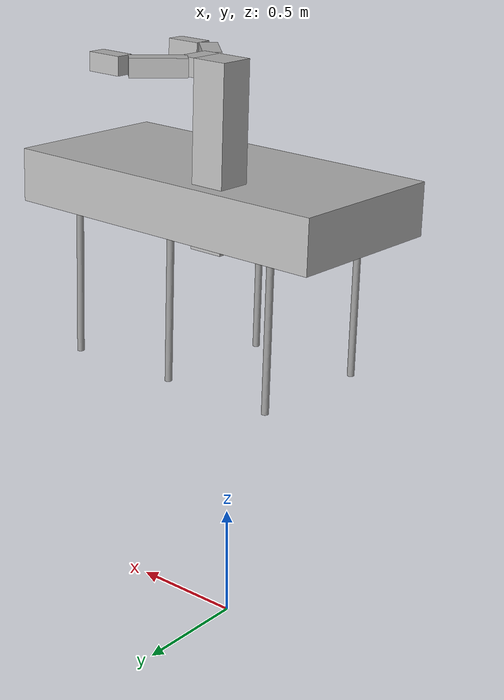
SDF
<?xml version='1.0'?>
<sdf version='1.6'>
  <model name='6LegsandClaw'>
    <model name='mobile_base'>
      <link name='chassis'>
        <pose frame=''>0 0 0.25 0 -0 0</pose>
        <inertial>
          <mass>20</mass>
          <pose frame=''>-0.1 0 -0.1 0 -0 0</pose>
          <inertia>
            <ixx>0.5</ixx>
            <iyy>1</iyy>
            <izz>0.1</izz>
            <ixy>0</ixy>
            <ixz>0</ixz>
            <iyz>0</iyz>
          </inertia>
        </inertial>
        <collision name='collision'>
          <geometry>
            <box>
              <size>2 1 0.3</size>
            </box>
          </geometry>
        </collision>
        <visual name='visual'>
          <geometry>
            <box>
              <size>2 1 0.3</size>
            </box>
          </geometry>
        </visual>
        <collision name='front_left_leg'>
          <pose frame=''>0.68 0.38 0.5 0 -0 0</pose>
          <geometry>
            <cylinder>
              <radius>0.02</radius>
              <length>1</length>
            </cylinder>
          </geometry>
        </collision>
        <visual name='front_left_leg'>
          <pose frame=''>0.68 0.38 0.5 0 -0 0</pose>
          <geometry>
            <cylinder>
              <radius>0.02</radius>
              <length>1</length>
            </cylinder>
          </geometry>
          <material>
            <script>
              <uri>file://media/materials/scripts/gazebo.material</uri>
              <name>Gazebo/Grey</name>
            </script>
          </material>
        </visual>
        <collision name='front_right_leg'>
          <pose frame=''>0.68 -0.38 0.5 0 -0 0</pose>
          <geometry>
            <cylinder>
              <radius>0.02</radius>
              <length>1</length>
            </cylinder>
          </geometry>
        </collision>
        <visual name='front_right_leg'>
          <pose frame=''>0.68 -0.38 0.5 0 -0 0</pose>
          <geometry>
            <cylinder>
              <radius>0.02</radius>
              <length>1</length>
            </cylinder>
          </geometry>
          <material>
            <script>
              <uri>file://media/materials/scripts/gazebo.material</uri>
              <name>Gazebo/Grey</name>
            </script>
          </material>
        </visual>
        <collision name='back_right_leg'>
          <pose frame=''>-0.68 -0.38 0.5 0 -0 0</pose>
          <geometry>
            <cylinder>
              <radius>0.02</radius>
              <length>1</length>
            </cylinder>
          </geometry>
        </collision>
        <visual name='back_right_leg'>
          <pose frame=''>-0.68 -0.38 0.5 0 -0 0</pose>
          <geometry>
            <cylinder>
              <radius>0.02</radius>
              <length>1</length>
            </cylinder>
          </geometry>
          <material>
            <script>
              <uri>file://media/materials/scripts/gazebo.material</uri>
              <name>Gazebo/Grey</name>
            </script>
          </material>
        </visual>
        <collision name='back_left_leg'>
          <pose frame=''>-0.68 0.38 0.5 0 -0 0</pose>
          <geometry>
            <cylinder>
              <radius>0.02</radius>
              <length>1</length>
            </cylinder>
          </geometry>
        </collision>
        <visual name='back_left_leg'>
          <pose frame=''>-0.68 0.38 0.5 0 -0 0</pose>
          <geometry>
            <cylinder>
              <radius>0.02</radius>
              <length>1</length>
            </cylinder>
          </geometry>
          <material>
            <script>
              <uri>file://media/materials/scripts/gazebo.material</uri>
              <name>Gazebo/Grey</name>
            </script>
          </material>
  </visual>
        <collision name='another_leg'>
          <pose frame=''>0 -0.38 0.5 0 -0 0</pose>
          <geometry>
            <cylinder>
              <radius>0.02</radius>
              <length>1</length>
            </cylinder>
          </geometry>
        </collision>
        <visual name='another_leg'>
          <pose frame=''>0 -0.38 0.5 0 -0 0</pose>
          <geometry>
            <cylinder>
              <radius>0.02</radius>
              <length>1</length>
            </cylinder>
          </geometry>
          <material>
            <script>
              <uri>file://media/materials/scripts/gazebo.material</uri>
              <name>Gazebo/Grey</name>
            </script>
          </material>
        </visual>

       <collision name='another_leg'>
          <pose frame=''>0 0.38 0.5 0 -0 0</pose>
          <geometry>
            <cylinder>
              <radius>0.02</radius>
              <length>1</length>
            </cylinder>
          </geometry>
        </collision>
        <visual name='another_leg'>
          <pose frame=''>0 0.38 0.5 0 -0 0</pose>
          <geometry>
            <cylinder>
              <radius>0.02</radius>
              <length>1</length>
            </cylinder>
          </geometry>
          <material>
            <script>
              <uri>file://media/materials/scripts/gazebo.material</uri>
              <name>Gazebo/Grey</name>
            </script>
          </material>
        </visual>

      </link>
      <pose frame=''>1.35481 -1.52825 1.62433 -3.10482 0 0</pose>
    </model>
    <model name='simple_gripper'>
      <static>0</static>
      <link name='riser'>
        <pose frame=''>-0.15 0 0.5 0 -0 0</pose>
        <inertial>
          <pose frame=''>0 0 -0.5 0 -0 0</pose>
          <inertia>
            <ixx>0.01</ixx>
            <ixy>0</ixy>
            <ixz>0</ixz>
            <iyy>0.01</iyy>
            <iyz>0</iyz>
            <izz>0.01</izz>
          </inertia>
          <mass>10</mass>
        </inertial>
        <collision name='collision'>
          <geometry>
            <box>
              <size>0.2 0.2 1</size>
            </box>
          </geometry>
        </collision>
        <visual name='visual'>
          <geometry>
            <box>
              <size>0.2 0.2 1</size>
            </box>
          </geometry>
          <material>
            <script>
              <uri>__default__</uri>
              <name>__default__</name>
            </script>
          </material>
        </visual>
      </link>
      <link name='palm'>
        <pose frame=''>0 0 0.05 0 -0 0</pose>
        <inertial>
          <inertia>
            <ixx>0.01</ixx>
            <ixy>0</ixy>
            <ixz>0</ixz>
            <iyy>0.01</iyy>
            <iyz>0</iyz>
            <izz>0.01</izz>
          </inertia>
          <mass>0.5</mass>
        </inertial>
        <collision name='collision'>
          <geometry>
            <box>
              <size>0.1 0.2 0.1</size>
            </box>
          </geometry>
        </collision>
        <visual name='visual'>
          <geometry>
            <box>
              <size>0.1 0.2 0.1</size>
            </box>
          </geometry>
          <material>
            <script>
              <uri>__default__</uri>
              <name>__default__</name>
            </script>
          </material>
        </visual>
      </link>
      <link name='left_finger'>
        <pose frame=''>0.1 0.2 0.05 0 0 -0.78539</pose>
        <inertial>
          <inertia>
            <ixx>0.01</ixx>
            <ixy>0</ixy>
            <ixz>0</ixz>
            <iyy>0.01</iyy>
            <iyz>0</iyz>
            <izz>0.01</izz>
          </inertia>
          <mass>0.1</mass>
        </inertial>
        <collision name='collision'>
          <geometry>
            <box>
              <size>0.1 0.3 0.1</size>
            </box>
          </geometry>
        </collision>
        <visual name='visual'>
          <geometry>
            <box>
              <size>0.1 0.3 0.1</size>
            </box>
          </geometry>
          <material>
            <script>
              <uri>__default__</uri>
              <name>__default__</name>
            </script>
          </material>
        </visual>
      </link>
      <link name='left_finger_tip'>
        <pose frame=''>0.336 0.3 0.05 0 -0 1.5707</pose>
        <inertial>
          <inertia>
            <ixx>0.01</ixx>
            <ixy>0</ixy>
            <ixz>0</ixz>
            <iyy>0.01</iyy>
            <iyz>0</iyz>
            <izz>0.01</izz>
          </inertia>
          <mass>0.1</mass>
        </inertial>
        <collision name='collision'>
          <geometry>
            <box>
              <size>0.1 0.2 0.1</size>
            </box>
          </geometry>
        </collision>
        <visual name='visual'>
          <geometry>
            <box>
              <size>0.1 0.2 0.1</size>
            </box>
          </geometry>
          <material>
            <script>
              <uri>__default__</uri>
              <name>__default__</name>
            </script>
          </material>
        </visual>
      </link>
      <link name='right_finger'>
        <pose frame=''>0.1 -0.2 0.05 0 -0 0.78539</pose>
        <inertial>
          <inertia>
            <ixx>0.01</ixx>
            <ixy>0</ixy>
            <ixz>0</ixz>
            <iyy>0.01</iyy>
            <iyz>0</iyz>
            <izz>0.01</izz>
          </inertia>
          <mass>0.1</mass>
        </inertial>
        <collision name='collision'>
          <geometry>
            <box>
              <size>0.1 0.3 0.1</size>
            </box>
          </geometry>
        </collision>
        <visual name='visual'>
          <geometry>
            <box>
              <size>0.1 0.3 0.1</size>
            </box>
          </geometry>
          <material>
            <script>
              <uri>__default__</uri>
              <name>__default__</name>
            </script>
          </material>
        </visual>
      </link>
      <link name='right_finger_tip'>
        <pose frame=''>0.336 -0.3 0.05 0 -0 1.5707</pose>
        <inertial>
          <inertia>
            <ixx>0.01</ixx>
            <ixy>0</ixy>
            <ixz>0</ixz>
            <iyy>0.01</iyy>
            <iyz>0</iyz>
            <izz>0.01</izz>
          </inertia>
          <mass>0.1</mass>
        </inertial>
        <collision name='collision'>
          <geometry>
            <box>
              <size>0.1 0.2 0.1</size>
            </box>
          </geometry>
        </collision>
        <visual name='visual'>
          <geometry>
            <box>
              <size>0.1 0.2 0.1</size>
            </box>
          </geometry>
          <material>
            <script>
              <uri>__default__</uri>
              <name>__default__</name>
            </script>
          </material>
        </visual>
      </link>
      <static>1</static>
      <joint name='palm_left_finger' type='revolute'>
        <pose frame=''>0 -0.15 0 0 -0 0</pose>
        <child>left_finger</child>
        <parent>palm</parent>
        <axis>
          <limit>
            <lower>-0.4</lower>
            <upper>0.4</upper>
          </limit>
          <xyz>0 0 1</xyz>
          <use_parent_model_frame>1</use_parent_model_frame>
        </axis>
      </joint>
      <joint name='left_finger_tip' type='revolute'>
        <pose frame=''>0 0.1 0 0 -0 0</pose>
        <child>left_finger_tip</child>
        <parent>left_finger</parent>
        <axis>
          <limit>
            <lower>-0.4</lower>
            <upper>0.4</upper>
          </limit>
          <xyz>0 0 1</xyz>
          <use_parent_model_frame>1</use_parent_model_frame>
        </axis>
      </joint>
      <joint name='palm_right_finger' type='revolute'>
        <pose frame=''>0 0.15 0 0 -0 0</pose>
        <child>right_finger</child>
        <parent>palm</parent>
        <axis>
          <limit>
            <lower>-0.4</lower>
            <upper>0.4</upper>
          </limit>
          <xyz>0 0 1</xyz>
          <use_parent_model_frame>1</use_parent_model_frame>
        </axis>
      </joint>
      <joint name='right_finger_tip' type='revolute'>
        <pose frame=''>0 0.1 0 0 -0 0</pose>
        <child>right_finger_tip</child>
        <parent>right_finger</parent>
        <axis>
          <limit>
            <lower>-0.4</lower>
            <upper>0.4</upper>
          </limit>
          <xyz>0 0 1</xyz>
          <use_parent_model_frame>1</use_parent_model_frame>
        </axis>
      </joint>
      <joint name='palm_riser' type='prismatic'>
        <child>palm</child>
        <parent>riser</parent>
        <axis>
          <limit>
            <lower>0</lower>
            <upper>0.9</upper>
          </limit>
          <xyz>0 0 1</xyz>
          <use_parent_model_frame>1</use_parent_model_frame>
        </axis>
      </joint>
      <pose frame=''>1.22633 -1.22531 2.1884 -3.10873 0 0</pose>
    </model>
    <static>1</static>
    <allow_auto_disable>1</allow_auto_disable>
  </model>
</sdf>
